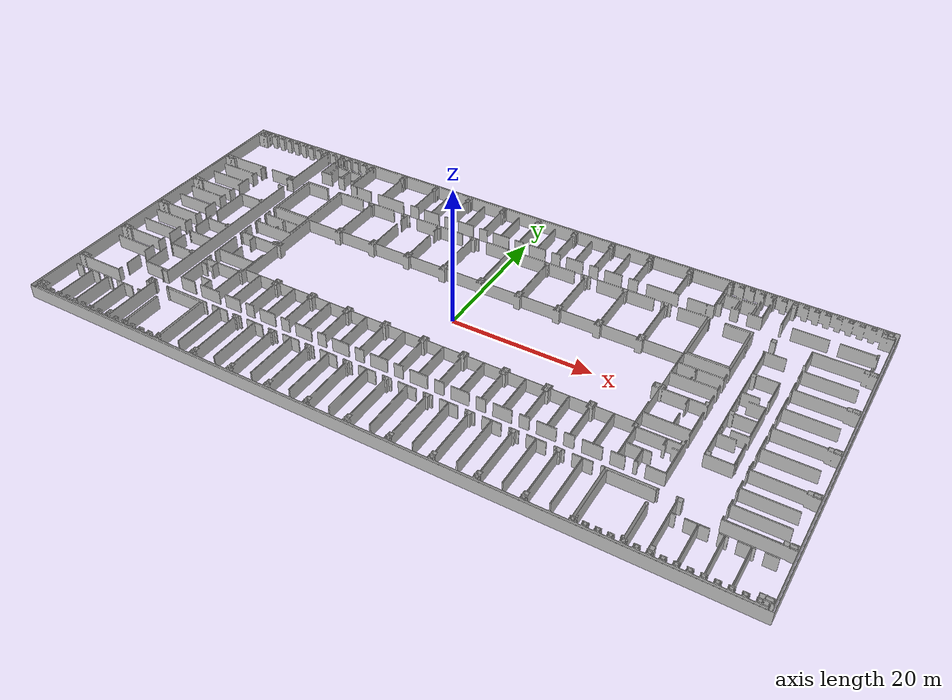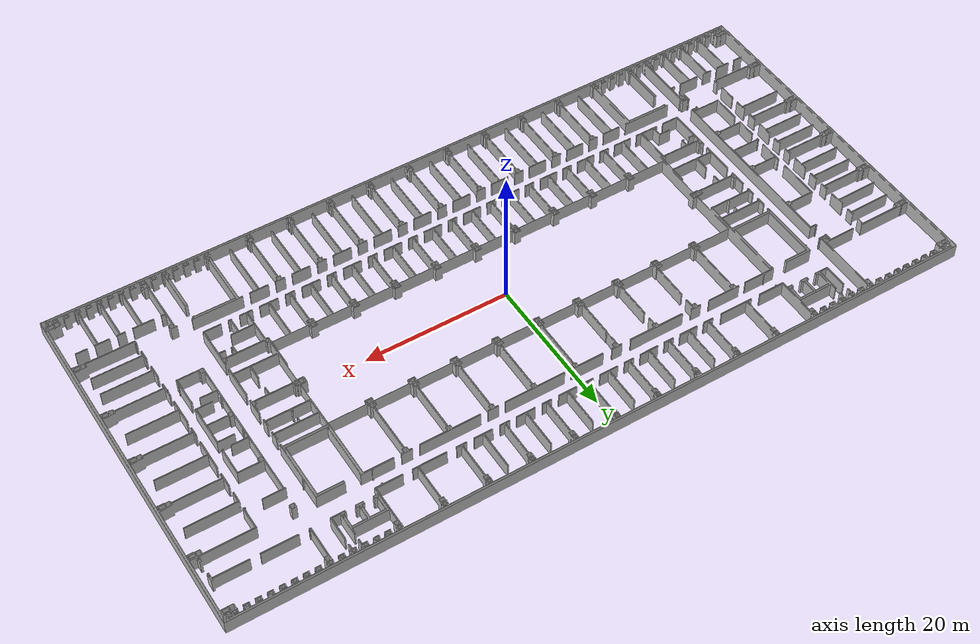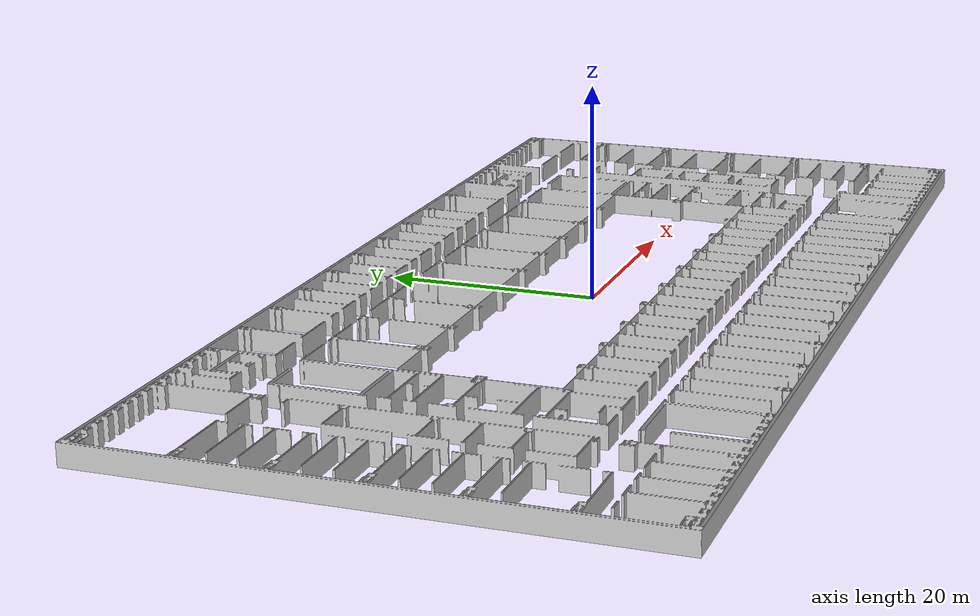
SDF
<?xml version="1.0" ?>
<sdf version="1.6">
<model name='povo'>
      <static>1</static>
      <link name='walls'>
        <self_collide>0</self_collide>
        <kinematic>0</kinematic>
        <gravity>1</gravity>

        <visual name='Walls_Visual'>
          <geometry>
            <mesh>
              <uri>model://povo/meshes/povo.dae</uri>
            </mesh>
          </geometry>
          <cast_shadows>1</cast_shadows>
          <transparency>0</transparency>
        </visual>

        <collision name='Walls_Collision'>
          <geometry>
            <mesh>
              <uri>model://povo/meshes/povo.dae</uri>
            </mesh>
          </geometry>
        </collision>

      </link>
    </model>
</sdf>
